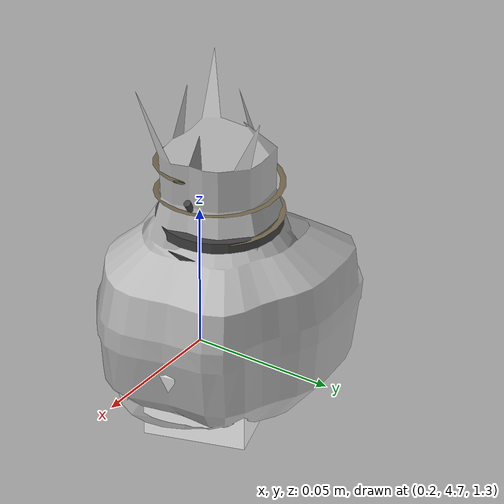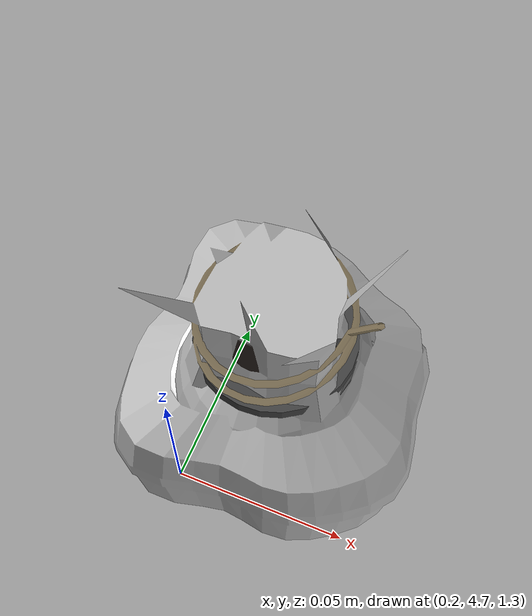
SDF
<sdf version="1.11">
 <world name="peach_orchard">
  <model name="ground">
   <static>true</static>
   <link name="link">
    <visual name="soil">
     <geometry><plane><normal>0 0 1</normal><size>32 22</size></plane></geometry>
     <material>
      <ambient>1 1 1 1</ambient>
      <diffuse>1 1 1 1</diffuse>
      <specular>0.1 0.1 0.1 1</specular>
      <pbr>
       <metal>
        <albedo_map>textures/soil_albedo.png</albedo_map>
        <normal_map type="tangent">textures/soil_normal.png</normal_map>
        <roughness>0.95</roughness>
        <metalness>0</metalness>
       </metal>
      </pbr>
     </material>
    </visual>
    <collision name="c_soil">
     <geometry><plane><normal>0 0 1</normal><size>32 22</size></plane></geometry>
    </collision>
   </link>
  </model>
  <model name="peach_tree_r2_t5_06">
   <pose>0.22 4.7225 1.29727 0 0.0136937 -0.0512914</pose>
   <static>true</static>
   <link name="bag">
    <visual name="bag_mesh">
     <pose>0 0 0.0465251 0 0 -0</pose>
     <geometry>
      <mesh><uri>model://peach_sim/meshes/bagged_peach.glb</uri><scale>1.00668 1.1212 1.05739</scale></mesh>
     </geometry>
    </visual>
    <visual name="body">
     <pose>0 0 0.0285251 0 0 0</pose>
     <geometry><ellipsoid><radii>0.0377505 0.0291512 0.0308071</radii></ellipsoid></geometry>
     <material>
      <ambient>1 1 1 1</ambient>
      <diffuse>1 1 1 1</diffuse>
      <specular>0.1 0.1 0.1 1</specular>
      <pbr>
       <metal>
        <albedo_map>textures/paper_bag_albedo.png</albedo_map>
        <normal_map type="tangent">textures/paper_bag_normal.png</normal_map>
        <roughness>0.72</roughness>
        <metalness>0</metalness>
       </metal>
      </pbr>
     </material>
    </visual>
    <visual name="bottom_fold">
     <pose>0 0 0.012 0 0 0.35</pose>
     <geometry><box><size>0.0585133 0.0335239 0.022</size></box></geometry>
     <material>
      <ambient>1 1 1 1</ambient>
      <diffuse>1 1 1 1</diffuse>
      <specular>0.1 0.1 0.1 1</specular>
      <pbr>
       <metal>
        <albedo_map>textures/paper_bag_albedo.png</albedo_map>
        <normal_map type="tangent">textures/paper_bag_normal.png</normal_map>
        <roughness>0.8</roughness>
        <metalness>0</metalness>
       </metal>
      </pbr>
     </material>
    </visual>
    <visual name="fruit">
     <pose>0 0 0.0210998 0 0 0</pose>
     <geometry><sphere><radius>0.0281838</radius></sphere></geometry>
     <material>
      <ambient>1 1 1 1</ambient>
      <diffuse>1 1 1 1</diffuse>
      <specular>0.1 0.1 0.1 1</specular>
      <pbr>
       <metal>
        <albedo_map>textures/fruit_skin_albedo.png</albedo_map>
        <normal_map type="tangent">textures/fruit_skin_normal.png</normal_map>
        <roughness>0.55</roughness>
        <metalness>0</metalness>
       </metal>
      </pbr>
     </material>
    </visual>
    <visual name="neck">
     <pose>0 0 0.0660501 0 0 0</pose>
     <geometry><cylinder><radius>0.013</radius><length>0.018</length></cylinder></geometry>
     <material>
      <ambient>1 1 1 1</ambient>
      <diffuse>1 1 1 1</diffuse>
      <specular>0.1 0.1 0.1 1</specular>
      <pbr>
       <metal>
        <albedo_map>textures/paper_bag_albedo.png</albedo_map>
        <normal_map type="tangent">textures/paper_bag_normal.png</normal_map>
        <roughness>0.75</roughness>
        <metalness>0</metalness>
       </metal>
      </pbr>
     </material>
    </visual>
    <visual name="gather">
     <pose>0 0 0.0470501 0 0 0</pose>
     <geometry><cylinder><radius>0.019</radius><length>0.02</length></cylinder></geometry>
     <material>
      <ambient>1 1 1 1</ambient>
      <diffuse>1 1 1 1</diffuse>
      <specular>0.1 0.1 0.1 1</specular>
      <pbr>
       <metal>
        <albedo_map>textures/paper_bag_albedo.png</albedo_map>
        <normal_map type="tangent">textures/paper_bag_normal.png</normal_map>
        <roughness>0.8</roughness>
        <metalness>0</metalness>
       </metal>
      </pbr>
     </material>
    </visual>
    <visual name="inner_paper">
     <pose>0 0 0.0710501 0 0 0</pose>
     <geometry><cylinder><radius>0.01</radius><length>0.008</length></cylinder></geometry>
     <material>
      <ambient>0.180392 0.14902 0.133333 1</ambient>
      <diffuse>0.180392 0.14902 0.133333 1</diffuse>
      <specular>0.1 0.1 0.1 1</specular>
     </material>
    </visual>
    <visual name="wire_0">
     <pose>0 0 0.0610501 0 0 0</pose>
     <geometry><cylinder><radius>0.0205</radius><length>0.0035</length></cylinder></geometry>
     <material>
      <ambient>0.25 0.25 0.25 1</ambient>
      <diffuse>0.25 0.25 0.25 1</diffuse>
      <specular>0.1 0.1 0.1 1</specular>
     </material>
    </visual>
    <visual name="wire_1">
     <pose>0 0 0.0680501 0 0 0</pose>
     <geometry><cylinder><radius>0.0205</radius><length>0.0035</length></cylinder></geometry>
     <material>
      <ambient>0.25 0.25 0.25 1</ambient>
      <diffuse>0.25 0.25 0.25 1</diffuse>
      <specular>0.1 0.1 0.1 1</specular>
     </material>
    </visual>
    <visual name="wire_tail">
     <pose>0.01 0 0.0690501 0 0.521618 0</pose>
     <geometry><cylinder><radius>0.0012</radius><length>0.026</length></cylinder></geometry>
     <material>
      <ambient>0.25 0.25 0.25 1</ambient>
      <diffuse>0.25 0.25 0.25 1</diffuse>
      <specular>0.1 0.1 0.1 1</specular>
     </material>
    </visual>
    <collision name="c_body">
     <pose>0 0 0.0285251 0 0 0</pose>
     <geometry><cylinder><radius>0.0377505</radius><length>0.0570501</length></cylinder></geometry>
    </collision>
   </link>
  </model>
 </world>
</sdf>
